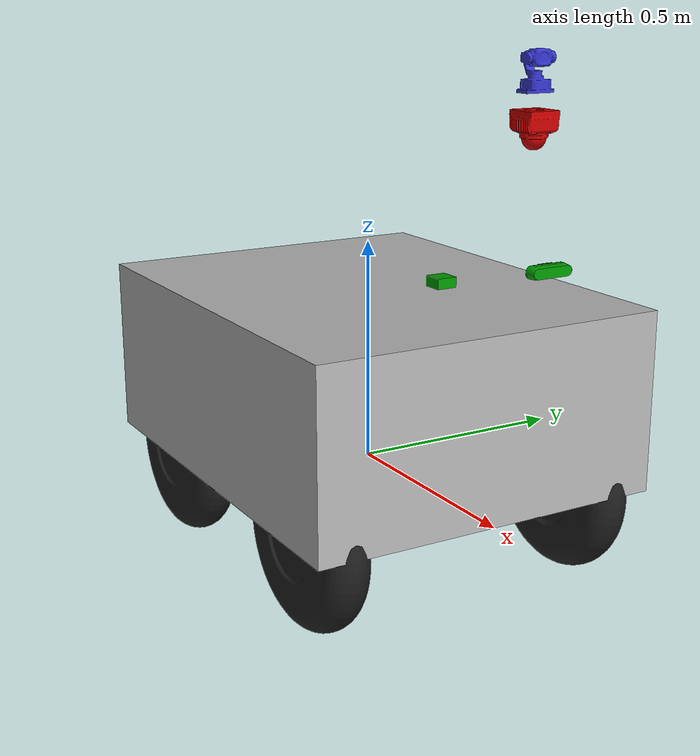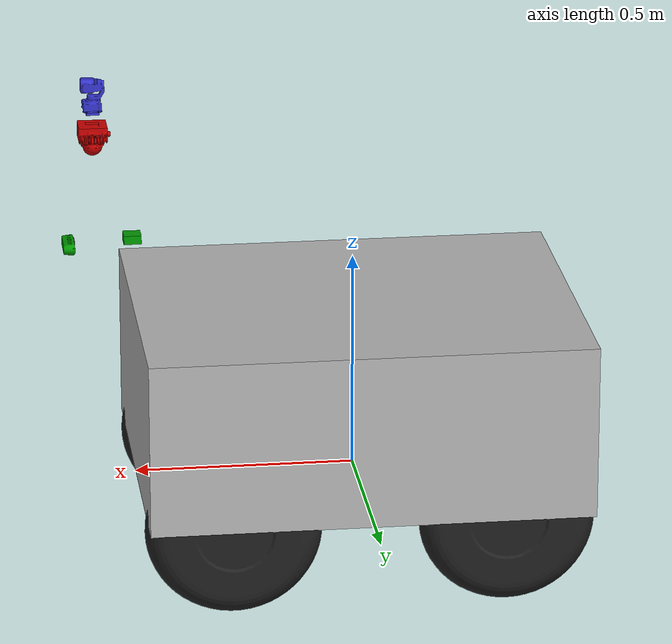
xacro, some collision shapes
<?xml version="1.0" ?>
<robot name="agriedge" xmlns:xacro="http://www.ros.org/wiki/xacro">

<xacro:arg name="use_ros2_control" default="true"/>
<xacro:arg name="sim_mode" default="false"/>

<xacro:include filename="$(find agriedge)/urdf/materials.xacro" />
<xacro:include filename="$(find agriedge)/urdf/gz_plugins.xacro" />

<xacro:if value="$(arg use_ros2_control)">
  <xacro:include filename="$(find agriedge)/urdf/ros2_control.xacro" />
</xacro:if>

<xacro:property name="wheel_radius" value="0.1777"/>
<xacro:property name="wheel_width" value="0.108"/>

<link name="base_footprint"/>

<joint name="base_footprint_joint" type="fixed">
  <origin xyz="0 0 0" rpy="0 0 0"/>
  <parent link="base_footprint"/>
  <child link="base_link"/>
</joint>

<link name="base_link">
  <inertial>
    <origin xyz="-0.00417095121956512 -0.00241531123159877 0.36100669257767" rpy="0 0 0"/>
    <mass value="61.9383310823044"/>
    <inertia ixx="1.70206796007567" ixy="-0.000185653679970753" ixz="9.97505947807799E-06"
             iyy="6.09198512654387" iyz="0.000104721803753137"
             izz="7.57598084133915"/>
  </inertial>
  <visual>
    <origin xyz="0 0 0" rpy="0 0 0"/>
    <geometry>
      <mesh filename="file://$(find agriedge)/meshes/base_link.STL"/>
    </geometry>
    <material name="chassis_silver"/>
  </visual>
  <collision>
    <!-- Simplified chassis collision avoids STL snagging on terrain -->
    <origin xyz="0 0 0.20" rpy="0 0 0"/>
    <geometry>
      <box size="1.00 0.80 0.40"/>
    </geometry>
  </collision>
</link>

<link name="AV_D_Link">
  <inertial>
    <origin xyz="-2.66453525910038E-15 -7.21644966006352E-16 -0.0488079901212786" rpy="0 0 0"/>
    <mass value="10.657855405027"/>
    <inertia ixx="0.105613457614365" ixy="-1.9937953784503E-17" ixz="-1.97944099945627E-16"
             iyy="0.105613457614365" iyz="-3.17412879252657E-17"
             izz="0.196462639195501"/>
  </inertial>
  <visual>
    <origin xyz="0 0 0" rpy="0 0 0"/>
    <geometry>
      <mesh filename="file://$(find agriedge)/meshes/AV_D_Link.STL"/>
    </geometry>
    <material name="wheel_black"/>
  </visual>
  <collision>
    <origin xyz="0 0 0" rpy="0 0 0"/>
    <geometry>
      <cylinder radius="${wheel_radius}" length="${wheel_width}"/>
    </geometry>
  </collision>
</link>
<joint name="AV_D_joint" type="continuous">
  <origin xyz="0.308 -0.36674 -0.017" rpy="1.5708 0 0"/>
  <parent link="base_link"/>
  <child link="AV_D_Link"/>
  <axis xyz="0 0 1"/>
  <limit effort="120" velocity="18"/>
  <dynamics damping="0.05" friction="0.05"/>
</joint>

<link name="AR_D_Link">
  <inertial>
    <origin xyz="0 5.55111512312578E-17 -0.0437387693299911" rpy="0 0 0"/>
    <mass value="10.657855405027"/>
    <inertia ixx="0.105613457614365" ixy="-4.88093222292344E-19" ixz="-1.36923763684909E-16"
             iyy="0.105613457614365" iyz="-8.1742349778627E-17"
             izz="0.196462639195501"/>
  </inertial>
  <visual>
    <origin xyz="0 0 0" rpy="0 0 0"/>
    <geometry>
      <mesh filename="file://$(find agriedge)/meshes/AR_D_Link.STL"/>
    </geometry>
    <material name="wheel_black"/>
  </visual>
  <collision>
    <origin xyz="0 0 0" rpy="0 0 0"/>
    <geometry>
      <cylinder radius="${wheel_radius}" length="${wheel_width}"/>
    </geometry>
  </collision>
</link>
<joint name="AR_D_joint" type="continuous">
  <origin xyz="-0.308 -0.36167 -0.017" rpy="1.5708 0 0"/>
  <parent link="base_link"/>
  <child link="AR_D_Link"/>
  <axis xyz="0 0 1"/>
  <limit effort="120" velocity="18"/>
  <dynamics damping="0.05" friction="0.05"/>
</joint>

<link name="AV_G_Link">
  <inertial>
    <origin xyz="0 -1.66533453693773E-16 0.0488079901212815" rpy="0 0 0"/>
    <mass value="10.657855405027"/>
    <inertia ixx="0.105613457614365" ixy="-5.59617042711752E-18" ixz="-6.82317980604428E-18"
             iyy="0.105613457614365" iyz="-2.22852761344364E-16"
             izz="0.196462639195501"/>
  </inertial>
  <visual>
    <origin xyz="0 0 0" rpy="0 0 0"/>
    <geometry>
      <mesh filename="file://$(find agriedge)/meshes/AV_G_Link.STL"/>
    </geometry>
    <material name="wheel_black"/>
  </visual>
  <collision>
    <origin xyz="0 0 0" rpy="0 0 0"/>
    <geometry>
      <cylinder radius="${wheel_radius}" length="${wheel_width}"/>
    </geometry>
  </collision>
</link>
<joint name="AV_G_joint" type="continuous">
  <origin xyz="0.308000000000012 0.366737835643882 -0.0170000000000005" rpy="1.5707963267949 0 0"/>
  <parent link="base_link"/>
  <child link="AV_G_Link"/>
  <axis xyz="0 0 1"/>
  <limit effort="120" velocity="18"/>
  <dynamics damping="0.05" friction="0.05"/>
</joint>

<link name="AR_G_Link">
  <inertial>
    <origin xyz="0 -5.55111512312578E-17 0.0488079901212819" rpy="0 0 0"/>
    <mass value="10.657855405027"/>
    <inertia ixx="0.105613457614365" ixy="-3.29449071720413E-19" ixz="-4.63597471896205E-18"
             iyy="0.105613457614365" iyz="-1.77088881526179E-16"
             izz="0.196462639195501"/>
  </inertial>
  <visual>
    <origin xyz="0 0 0" rpy="0 0 0"/>
    <geometry>
      <mesh filename="file://$(find agriedge)/meshes/AR_G_Link.STL"/>
    </geometry>
    <material name="wheel_black"/>
  </visual>
  <collision>
    <origin xyz="0 0 0" rpy="0 0 0"/>
    <geometry>
      <cylinder radius="${wheel_radius}" length="${wheel_width}"/>
    </geometry>
  </collision>
</link>
<joint name="AR_G_joint" type="continuous">
  <origin xyz="-0.307999999999992 0.366737835643881 -0.0170000000000008" rpy="1.5707963267949 0 0"/>
  <parent link="base_link"/>
  <child link="AR_G_Link"/>
  <axis xyz="0 0 1"/>
  <limit effort="120" velocity="18"/>
  <dynamics damping="0.05" friction="0.05"/>
</joint>

<link name="lidar_Link">
  <inertial>
    <origin xyz="0.000159186781974352 5.07986041275998E-06 -0.043469487577298" rpy="0 0 0"/>
    <mass value="0.177860600944542"/>
    <inertia ixx="5.58086482133709E-05" ixy="1.41429394666722E-08" ixz="-3.07876346138148E-07"
             iyy="5.92691922016033E-05" iyz="5.57295928405338E-12"
             izz="9.5466399844112E-05"/>
  </inertial>
  <visual>
    <origin xyz="0 0 0" rpy="0 0 0"/>
    <geometry>
      <mesh filename="file://$(find agriedge)/meshes/lidar_Link.STL"/>
    </geometry>
    <material name="lidar_red"/>
  </visual>
  <collision>
    <origin xyz="0 0 0" rpy="0 0 0"/>
    <geometry>
      <mesh filename="file://$(find agriedge)/meshes/lidar_Link.STL"/>
    </geometry>
  </collision>
</link>
<joint name="lidar_joint" type="fixed">
  <origin xyz="0.585000000000027 0 0.7649029" rpy="-3.14159265358979 0 -3.14159265358979"/>
  <parent link="base_link"/>
  <child link="lidar_Link"/>
</joint>

<link name="cam_Link">
  <inertial>
    <origin xyz="-0.0226158939855332 -0.022618989029416 -0.0012379327837766" rpy="0 0 0"/>
    <mass value="0.095298987254699"/>
    <inertia ixx="2.07983015136016E-05" ixy="8.38026993965303E-07" ixz="2.10534496019227E-07"
             iyy="2.63066776224361E-05" iyz="1.41516164232413E-07"
             izz="1.49132584322726E-05"/>
  </inertial>
  <visual>
    <origin xyz="0 0 0" rpy="0 0 0"/>
    <geometry>
      <mesh filename="file://$(find agriedge)/meshes/cam_Link.STL"/>
    </geometry>
    <material name="cam_blue"/>
  </visual>
  <collision>
    <origin xyz="0 0 0" rpy="0 0 0"/>
    <geometry>
      <mesh filename="file://$(find agriedge)/meshes/cam_Link.STL"/>
    </geometry>
  </collision>
</link>
<joint name="cam_joint" type="fixed">
  <origin xyz="0.60871 -0.0012978 0.92609" rpy="1.5708 0 0"/>
  <parent link="base_link"/>
  <child link="cam_Link"/>
</joint>

<link name="camera_optical_frame"/>
<joint name="camera_optical_joint" type="fixed">
  <origin xyz="0 0 0" rpy="${-pi/2} 0 ${-pi/2}"/>
  <parent link="cam_Link"/>
  <child link="camera_optical_frame"/>
</joint>

<link name="camnav_Link">
  <inertial>
    <origin xyz="-0.00925372526693868 -5.95715081210813E-05 -0.0117421367150996" rpy="0 0 0"/>
    <mass value="0.0455021307700257"/>
    <inertia ixx="2.73736522546793E-05" ixy="-5.95992913918624E-10" ixz="-2.33494573713122E-07"
             iyy="2.75337121147786E-05" iyz="2.75014303692742E-09"
             izz="4.09798843901291E-06"/>
  </inertial>
  <visual>
    <origin xyz="0 0 0" rpy="0 0 0"/>
    <geometry>
      <mesh filename="file://$(find agriedge)/meshes/camnav_Link.STL"/>
    </geometry>
    <material name="camnav_green"/>
  </visual>
  <collision>
    <origin xyz="0 0 0" rpy="0 0 0"/>
    <geometry>
      <mesh filename="file://$(find agriedge)/meshes/camnav_Link.STL"/>
    </geometry>
  </collision>
</link>
<joint name="camnav_joint" type="fixed">
  <origin xyz="0.652 -0.0115 0.5535" rpy="1.5708 0 0"/>
  <parent link="base_link"/>
  <child link="camnav_Link"/>
</joint>

<link name="camnav_optical_frame"/>
<joint name="camnav_optical_joint" type="fixed">
  <origin xyz="0 0 0" rpy="${-pi/2} 0 ${-pi/2}"/>
  <parent link="camnav_Link"/>
  <child link="camnav_optical_frame"/>
</joint>

<link name="GPS_Link">
  <inertial>
    <origin xyz="0 0 0" rpy="0 0 0"/>
    <mass value="0.1"/>
    <inertia ixx="1e-4" ixy="0" ixz="0"
             iyy="1e-4" iyz="0" izz="1e-4"/>
  </inertial>
  <visual>
    <origin xyz="0 0 0" rpy="0 0 0"/>
    <geometry>
      <box size="0.04 0.04 0.02"/>
    </geometry>
    <material name="camnav_green"/>
  </visual>
  <collision>
    <origin xyz="0 0 0" rpy="0 0 0"/>
    <geometry>
      <box size="0.04 0.04 0.02"/>
    </geometry>
  </collision>
</link>
<joint name="GPS_Sensor" type="fixed">
  <origin xyz="0.49 -0.13 0.52" rpy="0 0 0"/>
  <parent link="base_link"/>
  <child link="GPS_Link"/>
</joint>

</robot>

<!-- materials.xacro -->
<robot name="agriedge" xmlns:xacro="http://www.ros.org/wiki/xacro">

<material name="chassis_silver">
  <color rgba="0.700 0.700 0.700 1.000"/>
</material>

<material name="wheel_black">
  <color rgba="0.12 0.12 0.12 1.0"/>
</material>

<material name="lidar_red">
  <color rgba="0.8 0.0 0.0 1.0"/>
</material>

<material name="cam_blue">
  <color rgba="0.2 0.2 0.8 1.0"/>
</material>

<material name="camnav_green">
  <color rgba="0.0 0.6 0.0 1.0"/>
</material>

</robot>
